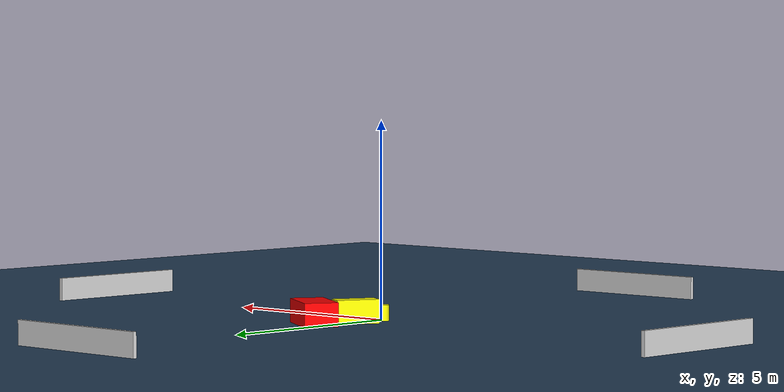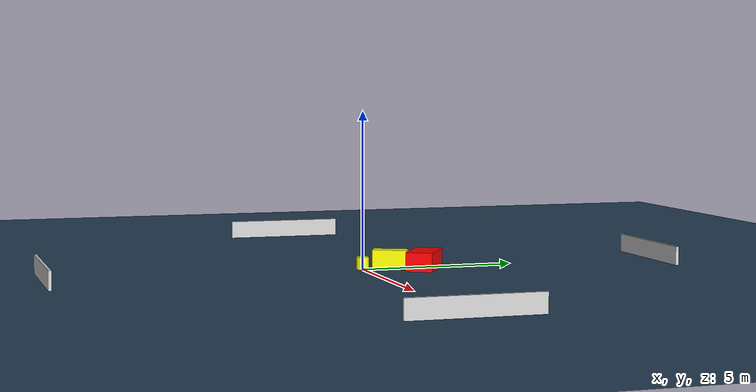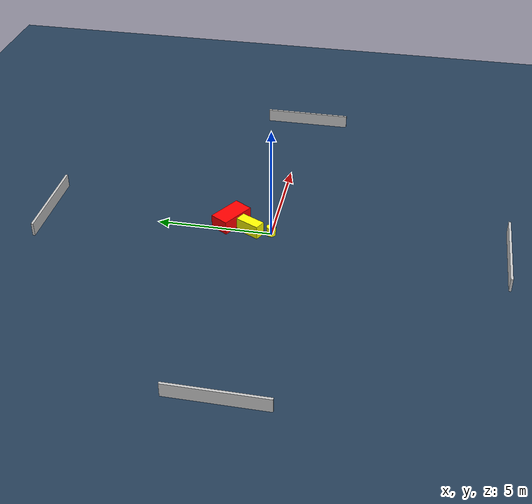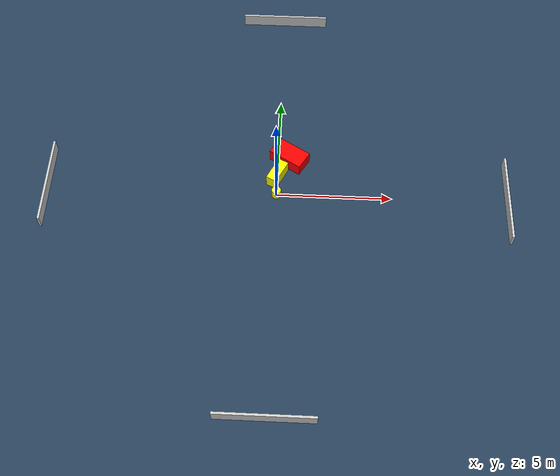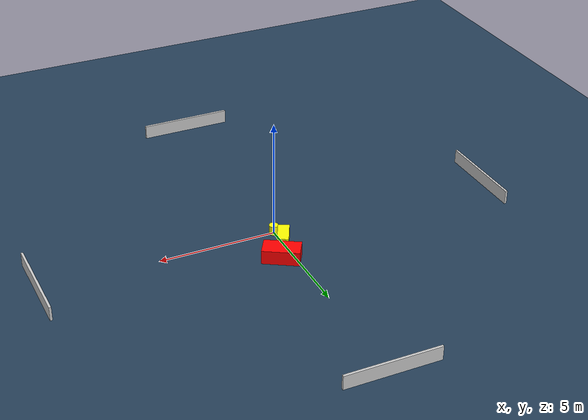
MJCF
<?xml version="1.0" ?>
<mujoco model="generated_environment">
  <option timestep="0.01" integrator="RK4" cone="elliptic"/>
  <default>
    <geom density="1"/>
  </default>
  <asset>
    <texture builtin="gradient" height="3072" name="skybox" rgb1="0.3 0.5 0.7" rgb2="0 0 0" type="skybox" width="512"/>
    <texture builtin="checker" height="300" name="groundplane" rgb1="0.2 0.3 0.4" rgb2="0.1 0.2 0.3" type="2d" width="300"/>
    <material name="groundplane" reflectance="0.2" texrepeat="5 5" texture="groundplane"/>
  </asset>
  <worldbody>
    <light dir="0 0 -1" directional="true" pos="0 0 1.5"/>
    <geom condim="3" friction="0.5 0.005 0.001" material="groundplane" name="floor" pos="0 0 0" size="0 0 0.05" type="plane"/>
    <body name="walls">
      <geom name="wall_1" condim="4" pos="-10.0 0.0 0.3" rgba="0.800000011920929 0.800000011920929 0.800000011920929 1.0" size="0.05 2.0 0.3" type="box"/>
      <geom name="wall_2" condim="4" pos="10.0 0.0 0.3" rgba="0.800000011920929 0.800000011920929 0.800000011920929 1.0" size="0.05 2.0 0.3" type="box"/>
      <geom name="wall_3" condim="4" pos="0.0 -10.0 0.3" rgba="0.800000011920929 0.800000011920929 0.800000011920929 1.0" size="2.0 0.05 0.3" type="box"/>
      <geom name="wall_4" condim="4" pos="0.0 10.0 0.3" rgba="0.800000011920929 0.800000011920929 0.800000011920929 1.0" size="2.0 0.05 0.3" type="box"/>
    </body>
    <body name="robot">
      <joint name="joint_x" type="slide" pos="0 0 0" axis="1 0 0"/>
      <joint name="joint_y" type="slide" pos="0 0 0" axis="0 1 0"/>
      <geom name="robot" type="cylinder" pos="0.0 0.0 0.2" size="0.2 0.2 0.0" mass="5.0" friction="1.0 0.005 0.0001" condim="4" rgba="1.0 1.0 0.0 1.0"/>
    </body>
    <body name="obstacle_1_movable">
      <geom name="obstacle_1_movable" condim="4" pos="0.0023962488814062337 0.922320642593345 0.3" euler="0 0 332.99572013736946" friction="0.0 0.005 0.001" rgba="1.0 1.0 0.0 1.0" size="0.2379059760075492 0.5524428029731212 0.3" type="box" mass="0.1"/>
      <joint type="free"/>
    </body>
    <body name="obstacle_2_static">
      <geom name="obstacle_2_static" condim="4" pos="0.5098891697638707 1.8716280143641335 0.3" euler="0 0 148.88658688755507" friction="0.0 0.005 0.001" rgba="1.0 0.0 0.0 1.0" size="0.7742813688825148 0.4263950391999029 0.3" type="box"/>
    </body>
  </worldbody>
  <actuator>
    <motor name="actuator_x" joint="joint_x" gear="1" ctrlrange="-1 1"/>
    <motor name="actuator_y" joint="joint_y" gear="1" ctrlrange="-1 1"/>
  </actuator>
</mujoco>
